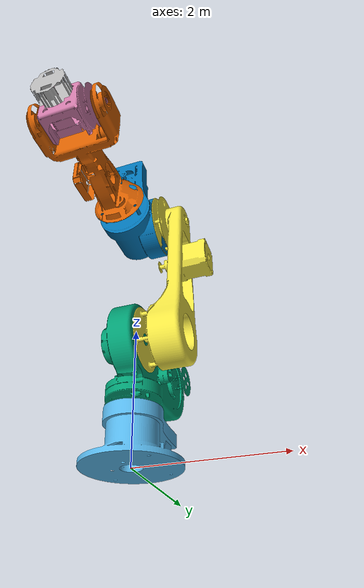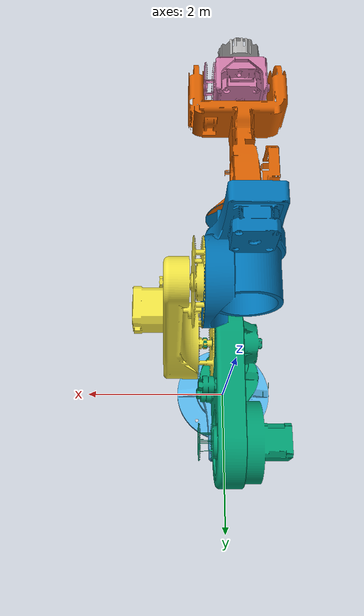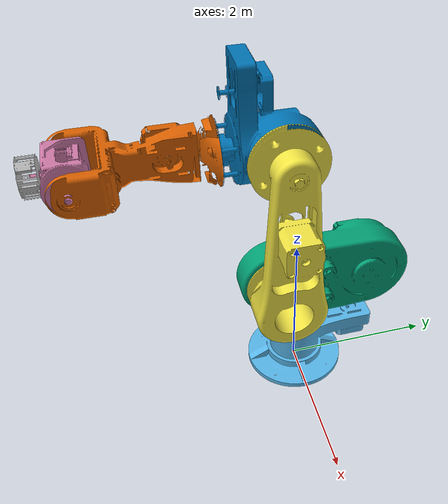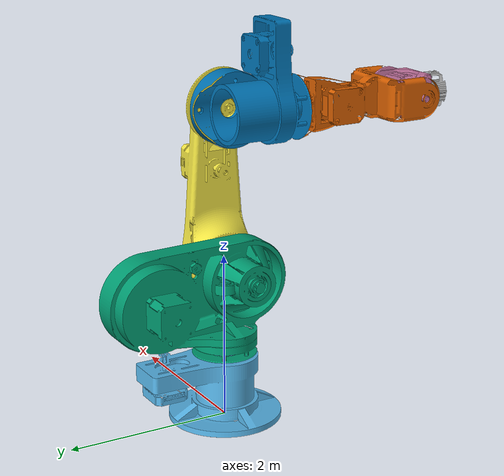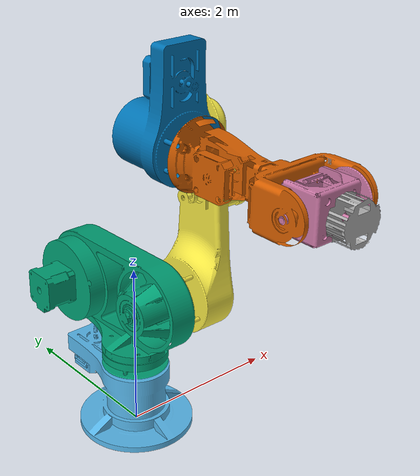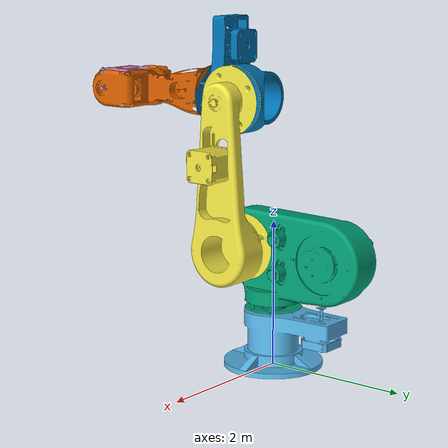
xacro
<?xml version="1.0"?>
<robot xmlns:xacro="http://www.ros.org/wiki/xacro" name="mogabot2">

    <!-- Import mogabot2 ros2_control description -->
    <xacro:include filename="mogabot2_ros2_control.xacro" />

    <xacro:arg name="initial_positions_file" default="/home/moga/ros2/mogarobotics_ws/src/mogabot2_moveit/config/initial_positions.yaml" />
    <xacro:mogabot2_ros2_control name="Mogabot2FakeSystem" initial_positions_file="$(arg initial_positions_file)"/>

    <link name="world"/>

    <link name="base_link">
        <visual>
            <geometry>
                <mesh filename="package://mogabot2_description/meshes/1_World_to_base_lowpoly.stl"
                      scale="0.01 0.01 0.01"/>
            </geometry>
            <origin xyz="0 0 0" rpy="0 0 0"/>
        </visual>
    </link>

    <link name="shoulder_link">
        <visual>
            <geometry>
                <mesh filename="package://mogabot2_description/meshes/2_Base_to_Shoulder_lowpoly.stl"
                      scale="0.01 0.01 0.01"/>
            </geometry>
            <origin xyz="0 0 0" rpy="0 0 0"/>
        </visual>
    </link>

    <link name="arm1_link">
        <visual>
            <geometry>
                <mesh filename="package://mogabot2_description/meshes/3_Shoulder_to_Elbow_lowpoly.stl"
                      scale="0.01 0.01 0.01"/>
            </geometry>
            <origin xyz="0 0 0" rpy="0 0 0"/>
        </visual>
    </link>

    <link name="elbow_link">
        <visual>
            <geometry>
                <mesh filename="package://mogabot2_description/meshes/4_Elbow_to_Forarm_bis_lowpoly.stl"
                      scale="0.01 0.01 0.01"/>
            </geometry>
            <origin xyz="0 0 0" rpy="0 0 3.14"/>
        </visual>
    </link>

    <link name="forarm_link">
        <visual>
            <geometry>
                <mesh filename="package://mogabot2_description/meshes/5_Forarm_to_Wrist_lowpoly.stl"
                      scale="0.01 0.01 0.01"/>
            </geometry>
            <origin xyz="0 0 0" rpy="3.14 3.14 0"/>
        </visual>
    </link>

    <link name="wrist_link">
        <visual>
            <geometry>
                <mesh filename="package://mogabot2_description/meshes/6_Wrist_to_Hand_lowpoly.stl"
                      scale="0.01 0.01 0.01"/>
            </geometry>
            <origin xyz="0 0 0" rpy="3.14 3.14 0"/>
        </visual>
    </link>

    <link name="hand_link">
        <visual>
            <geometry>
                <mesh filename="package://mogabot2_description/meshes/7_Hand_to_Gripper_lowpoly.stl"
                      scale="0.01 0.01 0.01"/>
            </geometry>
            <origin xyz="0 -0.2 0" rpy="3.14 0 0"/>
        </visual>
    </link>

    <joint name="world_base_joint" type="fixed">
        <parent link="world"/>
        <child link="base_link"/>
        <origin xyz="0 0 0" rpy="0 0 0"/>
    </joint>

    <joint name="base_shoulder_joint" type="revolute">
        <parent link="base_link"/>
        <child link="shoulder_link"/>
        <origin xyz="0 0 0.81" rpy="0 0 0"/>
        <axis xyz="0 0 1"/>
        <limit lower="-1.57" upper="1.57" effort="30" velocity="10"/>
    </joint>

    <joint name="shoulder_arm1_joint" type="revolute">
        <parent link="shoulder_link"/>
        <child link="arm1_link"/>
        <origin xyz="0.266 -0.2872 0.8451" rpy="0 0 0"/>
        <axis xyz="1 0 0"/>
        <limit lower="-3.14" upper="3.14" effort="30" velocity="10"/>
    </joint>

    <joint name="arm1_elbow_joint" type="revolute">
        <parent link="arm1_link"/>
        <child link="elbow_link"/>
        <origin xyz="0.224 0 2.0" rpy="0 0 3.14"/>
        <axis xyz="1 0 0"/>
        <limit lower="-3.14" upper="3.14" effort="30" velocity="10"/>
    </joint>

    <joint name="elbow_forarm_joint" type="revolute">
        <parent link="elbow_link"/>
        <child link="forarm_link"/>
        <origin xyz="0.42 0.70 0" rpy="0 0 0"/>
        <axis xyz="0 1 0"/>
        <limit lower="-3.14" upper="3.14" effort="30" velocity="10"/>
    </joint>

    <joint name="forarm_wrist_joint" type="revolute">
        <parent link="forarm_link"/>
        <child link="wrist_link"/>
        <origin xyz="0 1.584 0" rpy="0 0 0"/>
        <axis xyz="1 0 0"/>
        <limit lower="-3.14" upper="3.14" effort="30" velocity="10"/>
    </joint>

    <joint name="wrist_hand_joint" type="revolute">
        <parent link="wrist_link"/>
        <child link="hand_link"/>
        <origin xyz="0 0.4727 0" rpy="0 0 0"/>
        <axis xyz="0 1 0"/>
        <limit lower="-3.14" upper="3.14" effort="30" velocity="10"/>
    </joint>

</robot>
